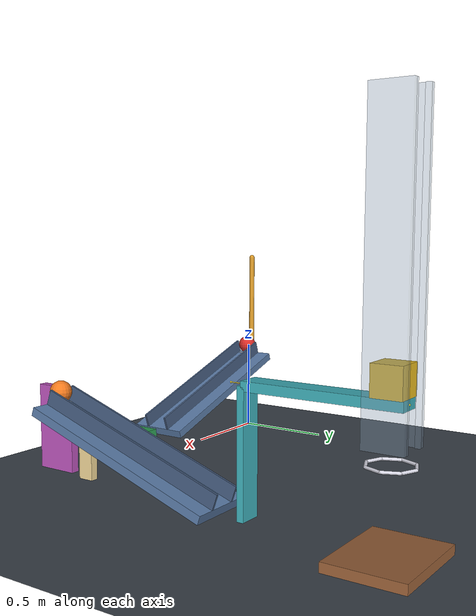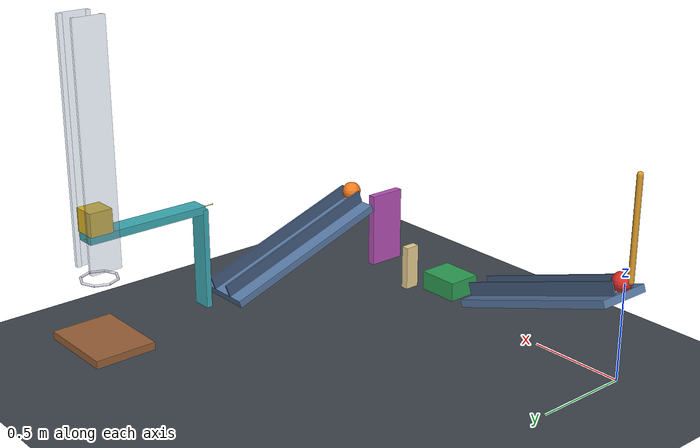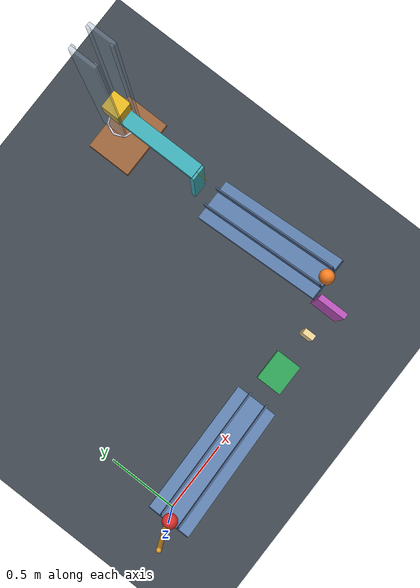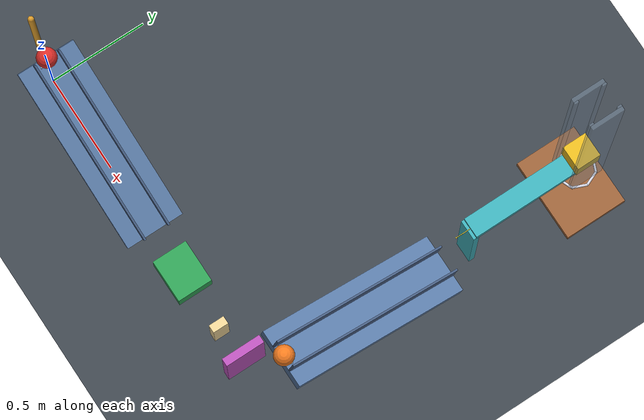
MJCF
<mujoco model="passive_chain_faceted_ring_candidate">
  <compiler angle="degree" autolimits="true"/>
  <option timestep="0.002" gravity="0 0 -9.81" integrator="implicitfast" solver="Newton" iterations="100" tolerance="1e-9"/>
  <size nconmax="500" njmax="2000"/>

  <!-- Unvalidated passive candidate: no actuators or prescribed motion. -->
  <!-- All bodies start at rest through the start keyframe. -->
  <!-- ring1 is octagonal, with 0.16 m minimum clear diameter across opposite facets. -->
  <!-- Its additional corner clearance is necessary for the aligned 0.12 m cube. -->
  <!-- It is not equivalent to a perfectly circular 0.16 m opening. -->
  <!-- MuJoCo has no exact restitution attribute. -->
  <!-- solref damping ratio 0.6901 approximates restitution 0.05 for a linear impact. -->
  <!-- Sliding friction is 0.68; the remaining friction entries are torsional and rolling. -->

  <visual>
    <headlight ambient="0.35 0.35 0.35" diffuse="0.65 0.65 0.65" specular="0.2 0.2 0.2"/>
    <map znear="0.01" zfar="30"/>
  </visual>

  <worldbody>
    <light name="main_light" pos="0 -2 5" dir="0 0 -1" directional="true"/>
    <camera name="overview" pos="3.8 -4.8 3.1" xyaxes="0.85 0.53 0 -0.24 0.39 0.89"/>

    <geom name="floor" type="plane" size="8 8 0.1" pos="0 0 0" friction="0.68 0.005 0.01" condim="6" solref="0.006 0.6901" solimp="0.95 0.99 0.001" rgba="0.24 0.27 0.30 1"/>

    <!-- Capsule endpoints and radius give an overall rigid rod length of 0.55 m. -->
    <body name="pendulum1" pos="-0.034 0 1.056565">
      <joint name="pendulum1_hinge" type="hinge" axis="0 1 0" range="-100 65" damping="0.04"/>
      <geom name="pendulum1_rod" type="capsule" fromto="0 0 -0.015 0 0 -0.535" size="0.015" mass="0.40" friction="0.68 0.005 0.01" condim="6" solref="0.006 0.6901" solimp="0.95 0.99 0.001" rgba="0.85 0.60 0.16 1"/>
    </body>

    <body name="ball1" pos="0.0162784 0 0.506565">
      <freejoint name="ball1_free"/>
      <geom name="ball1_sphere" type="sphere" size="0.05" mass="0.20" friction="0.68 0.005 0.01" condim="6" solref="0.006 0.6901" solimp="0.95 0.99 0.001" rgba="0.85 0.18 0.16 1"/>
    </body>

    <!-- Top surface length 0.95 m, width 0.30 m, slope 19 degrees. -->
    <!-- Downhill top edge is approximately x = 0.898242, z = 0.15. -->
    <body name="ramp1" pos="0.442609 0 0.285734" quat="0.986285602 0 0.165047606 0">
      <geom name="ramp1_surface" type="box" size="0.475 0.15 0.02" density="0" friction="0.68 0.005 0.01" condim="6" solref="0.006 0.6901" solimp="0.95 0.99 0.001" rgba="0.35 0.48 0.65 1"/>
      <geom name="ramp1_rail_left" type="box" pos="0 -0.065 0.055" size="0.475 0.005 0.035" density="0" friction="0.68 0.005 0.01" condim="6" solref="0.006 0.6901" solimp="0.95 0.99 0.001" rgba="0.27 0.36 0.50 1"/>
      <geom name="ramp1_rail_right" type="box" pos="0 0.065 0.055" size="0.475 0.005 0.035" density="0" friction="0.68 0.005 0.01" condim="6" solref="0.006 0.6901" solimp="0.95 0.99 0.001" rgba="0.27 0.36 0.50 1"/>
      <geom name="ramp1_release_lip" type="cylinder" pos="-0.4437 0 0.026" quat="0.707106781 0.707106781 0 0" size="0.004 0.045" density="0" friction="0.68 0.005 0.01" condim="6" solref="0.006 0.6901" solimp="0.95 0.99 0.001" rgba="0.65 0.70 0.75 1"/>
    </body>

    <!-- Cart initial left face x = 1.018242 gives a 0.12 m ramp-exit gap. -->
    <body name="cart1" pos="1.128242 0 0.13">
      <joint name="cart1_slide" type="slide" axis="1 0 0" range="0 0.40" damping="0.20"/>
      <geom name="cart1_box" type="box" size="0.11 0.09 0.05" mass="0.50" friction="0.68 0.005 0.01" condim="6" solref="0.006 0.6901" solimp="0.95 0.99 0.001" rgba="0.18 0.62 0.33 1"/>
    </body>

    <body name="domino1" pos="1.438242 0 0.12">
      <freejoint name="domino1_free"/>
      <geom name="domino1_box" type="box" size="0.02 0.04 0.12" mass="0.25" friction="0.68 0.005 0.01" condim="6" solref="0.006 0.6901" solimp="0.95 0.99 0.001" rgba="0.92 0.82 0.58 1"/>
    </body>

    <!-- Flap initial near face is 0.18 m beyond the domino's initial center. -->
    <!-- A small negative spring preload holds the upright flap against its lower stop. -->
    <body name="flap1" pos="1.638242 0.01 0.10">
      <joint name="flap1_hinge" type="hinge" axis="0 1 0" range="0 65" damping="0.04" stiffness="0.01" springref="-2" solreflimit="0.004 1" solimplimit="0.99 0.999 0.0001"/>
      <geom name="flap1_panel" type="box" pos="0 0 0.20" size="0.02 0.10 0.20" mass="0.30" friction="0.68 0.005 0.01" condim="6" solref="0.006 0.6901" solimp="0.95 0.99 0.001" rgba="0.72 0.32 0.72 1"/>
    </body>

    <body name="ball2" pos="1.758242 0.1512784 0.506565">
      <freejoint name="ball2_free"/>
      <geom name="ball2_sphere" type="sphere" size="0.05" mass="0.20" friction="0.68 0.005 0.01" condim="6" solref="0.006 0.6901" solimp="0.95 0.99 0.001" rgba="0.95 0.48 0.12 1"/>
    </body>

    <!-- Ramp2 runs along +y and is clear of the flap's panel sweep. -->
    <!-- Top high edge y = 0.135; top low edge approximately y = 1.033242, z = 0.15. -->
    <body name="ramp2" pos="1.758242 0.577609 0.285734" quat="0.697408655 -0.116706246 0.116706246 0.697408655">
      <geom name="ramp2_surface" type="box" size="0.475 0.15 0.02" density="0" friction="0.68 0.005 0.01" condim="6" solref="0.006 0.6901" solimp="0.95 0.99 0.001" rgba="0.35 0.48 0.65 1"/>
      <geom name="ramp2_rail_left" type="box" pos="0 -0.065 0.055" size="0.475 0.005 0.035" density="0" friction="0.68 0.005 0.01" condim="6" solref="0.006 0.6901" solimp="0.95 0.99 0.001" rgba="0.27 0.36 0.50 1"/>
      <geom name="ramp2_rail_right" type="box" pos="0 0.065 0.055" size="0.475 0.005 0.035" density="0" friction="0.68 0.005 0.01" condim="6" solref="0.006 0.6901" solimp="0.95 0.99 0.001" rgba="0.27 0.36 0.50 1"/>
      <geom name="ramp2_release_lip" type="cylinder" pos="-0.4437 0 0.026" quat="0.707106781 0.707106781 0 0" size="0.004 0.045" density="0" friction="0.68 0.005 0.01" condim="6" solref="0.006 0.6901" solimp="0.95 0.99 0.001" rgba="0.65 0.70 0.75 1"/>
    </body>

    <!-- A downward-reaching paddle is rigidly attached to the elevated beam's left end. -->
    <!-- Its initial upstream face y = 1.133242 gives the requested 0.10 m exit gap. -->
    <!-- The beam and paddle together have mass 0.55 kg. -->
    <!-- A stretched over-center spring is initially horizontal and produces zero hinge torque. -->
    <body name="seesaw1" pos="1.758242 1.473242 0.65">
      <joint name="seesaw1_hinge" type="hinge" axis="1 0 0" range="0 40" damping="0.04" solreflimit="0.004 1" solimplimit="0.99 0.999 0.0001"/>
      <geom name="seesaw1_beam" type="box" size="0.05 0.325 0.02" mass="0.531" friction="0.68 0.005 0.01" condim="6" solref="0.006 0.6901" solimp="0.95 0.99 0.001" rgba="0.24 0.68 0.72 1"/>
      <geom name="seesaw1_left_striking_paddle" type="box" pos="0 -0.325 -0.265" size="0.05 0.015 0.265" mass="0.019" friction="0.68 0.005 0.01" condim="6" solref="0.006 0.6901" solimp="0.95 0.99 0.001" rgba="0.24 0.68 0.72 1"/>
      <site name="seesaw1_spring_attachment" pos="0 0.325 0" size="0.004" rgba="0.9 0.8 0.2 1"/>
    </body>

    <site name="seesaw1_spring_anchor" pos="1.758242 1.073242 0.65" size="0.004" rgba="0.9 0.8 0.2 1"/>

    <body name="block1" pos="1.758242 1.738242 0.73">
      <freejoint name="block1_free"/>
      <geom name="block1_cube" type="box" size="0.06 0.06 0.06" mass="0.35" friction="0.68 0.005 0.01" condim="6" solref="0.006 0.6901" solimp="0.95 0.99 0.001" rgba="0.90 0.72 0.12 1"/>
    </body>

    <!-- Vertical guides preserve approximate alignment without constraining vertical travel. -->
    <!-- They stop at z = 0.49, above the ring, so they do not occupy its aperture. -->
    <!-- Corner posts leave a 0.104 m central slot for the 0.10 m-wide seesaw beam. -->
    <body name="block1_guides" pos="1.758242 1.738242 1.10">
      <geom name="block1_guides_left" type="box" pos="-0.071 0 0" size="0.01 0.08 0.61" density="0" friction="0.68 0.005 0.01" condim="6" solref="0.006 0.6901" solimp="0.95 0.99 0.001" rgba="0.55 0.65 0.75 0.35"/>
      <geom name="block1_guides_right" type="box" pos="0.071 0 0" size="0.01 0.08 0.61" density="0" friction="0.68 0.005 0.01" condim="6" solref="0.006 0.6901" solimp="0.95 0.99 0.001" rgba="0.55 0.65 0.75 0.35"/>
      <geom name="block1_guides_rear_left" type="box" pos="-0.057 -0.071 0" size="0.005 0.01 0.61" density="0" friction="0.68 0.005 0.01" condim="6" solref="0.006 0.6901" solimp="0.95 0.99 0.001" rgba="0.55 0.65 0.75 0.35"/>
      <geom name="block1_guides_rear_right" type="box" pos="0.057 -0.071 0" size="0.005 0.01 0.61" density="0" friction="0.68 0.005 0.01" condim="6" solref="0.006 0.6901" solimp="0.95 0.99 0.001" rgba="0.55 0.65 0.75 0.35"/>
      <geom name="block1_guides_front_left" type="box" pos="-0.057 0.071 0" size="0.005 0.01 0.61" density="0" friction="0.68 0.005 0.01" condim="6" solref="0.006 0.6901" solimp="0.95 0.99 0.001" rgba="0.55 0.65 0.75 0.35"/>
      <geom name="block1_guides_front_right" type="box" pos="0.057 0.071 0" size="0.005 0.01 0.61" density="0" friction="0.68 0.005 0.01" condim="6" solref="0.006 0.6901" solimp="0.95 0.99 0.001" rgba="0.55 0.65 0.75 0.35"/>
    </body>

    <!-- Closed horizontal octagonal ring. -->
    <!-- Capsule-center vertex radius = (0.08 + 0.006) / cos(pi/8). -->
    <!-- Minimum inner clearance across opposite facets is 0.16 m. -->
    <!-- An aligned cube corner has facet projection 0.06*(cos(pi/8)+sin(pi/8)) < 0.08. -->
    <!-- Ring center is directly 0.30 m below the block's initial center. -->
    <body name="ring1" pos="1.758242 1.738242 0.43">
      <geom name="ring1_segment_00" type="capsule" fromto="0.093085729 0 0 0.065821550 0.065821550 0" size="0.006" density="0" friction="0.68 0.005 0.01" condim="6" solref="0.006 0.6901" solimp="0.95 0.99 0.001" rgba="0.85 0.85 0.90 1"/>
      <geom name="ring1_segment_01" type="capsule" fromto="0.065821550 0.065821550 0 0 0.093085729 0" size="0.006" density="0" friction="0.68 0.005 0.01" condim="6" solref="0.006 0.6901" solimp="0.95 0.99 0.001" rgba="0.85 0.85 0.90 1"/>
      <geom name="ring1_segment_02" type="capsule" fromto="0 0.093085729 0 -0.065821550 0.065821550 0" size="0.006" density="0" friction="0.68 0.005 0.01" condim="6" solref="0.006 0.6901" solimp="0.95 0.99 0.001" rgba="0.85 0.85 0.90 1"/>
      <geom name="ring1_segment_03" type="capsule" fromto="-0.065821550 0.065821550 0 -0.093085729 0 0" size="0.006" density="0" friction="0.68 0.005 0.01" condim="6" solref="0.006 0.6901" solimp="0.95 0.99 0.001" rgba="0.85 0.85 0.90 1"/>
      <geom name="ring1_segment_04" type="capsule" fromto="-0.093085729 0 0 -0.065821550 -0.065821550 0" size="0.006" density="0" friction="0.68 0.005 0.01" condim="6" solref="0.006 0.6901" solimp="0.95 0.99 0.001" rgba="0.85 0.85 0.90 1"/>
      <geom name="ring1_segment_05" type="capsule" fromto="-0.065821550 -0.065821550 0 0 -0.093085729 0" size="0.006" density="0" friction="0.68 0.005 0.01" condim="6" solref="0.006 0.6901" solimp="0.95 0.99 0.001" rgba="0.85 0.85 0.90 1"/>
      <geom name="ring1_segment_06" type="capsule" fromto="0 -0.093085729 0 0.065821550 -0.065821550 0" size="0.006" density="0" friction="0.68 0.005 0.01" condim="6" solref="0.006 0.6901" solimp="0.95 0.99 0.001" rgba="0.85 0.85 0.90 1"/>
      <geom name="ring1_segment_07" type="capsule" fromto="0.065821550 -0.065821550 0 0.093085729 0 0" size="0.006" density="0" friction="0.68 0.005 0.01" condim="6" solref="0.006 0.6901" solimp="0.95 0.99 0.001" rgba="0.85 0.85 0.90 1"/>
    </body>

    <!-- Door top z = 0.12; upright block contact center z = 0.18. -->
    <!-- Thus the block center falls another 0.25 m after crossing the ring plane. -->
    <body name="door1" pos="1.548242 1.738242 0.10">
      <joint name="door1_hinge" type="hinge" axis="0 1 0" range="-5 80" damping="0.04" stiffness="5" springref="-10.623"/>
      <geom name="door1_panel" type="box" pos="0.21 0 0" size="0.21 0.16 0.02" mass="0.45" friction="0.68 0.005 0.01" condim="6" solref="0.006 0.6901" solimp="0.95 0.99 0.001" rgba="0.60 0.38 0.22 1"/>
    </body>
  </worldbody>

  <tendon>
    <spatial name="seesaw1_overcenter_spring" stiffness="220" damping="0" springlength="0.12" width="0.002" rgba="0.9 0.8 0.2 1">
      <site site="seesaw1_spring_anchor"/>
      <site site="seesaw1_spring_attachment"/>
    </spatial>
  </tendon>

  <keyframe>
    <!-- Hinge qpos values are radians; omitted qvel defaults to zero. -->
    <key name="start" qpos="0.959931089 0.0162784 0 0.506565 1 0 0 0 0 1.438242 0 0.12 1 0 0 0 0 1.758242 0.1512784 0.506565 1 0 0 0 0 1.758242 1.738242 0.73 1 0 0 0 0"/>
  </keyframe>
</mujoco>
